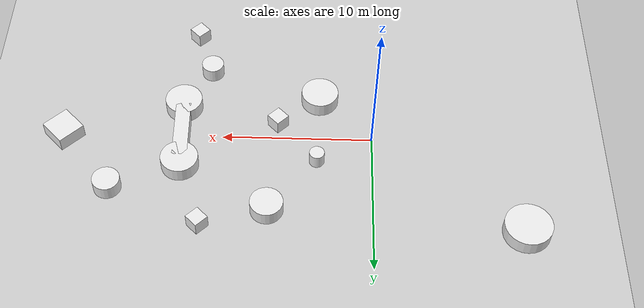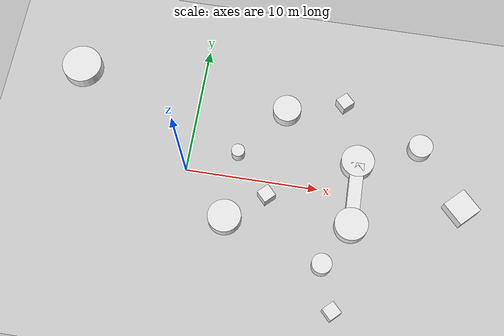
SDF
<sdf version="1.7">
 <world name="default">
  <light name="sun" type="directional">
   <pose>0 0 10 0 -0 0</pose>
   <diffuse>0.8 0.8 0.8 1</diffuse>
   <specular>0.2 0.2 0.2 1</specular>
   <attenuation>
    <range>1000</range>
    <constant>0.9</constant>
    <linear>0.01</linear>
    <quadratic>0.001</quadratic>
   </attenuation>
   <direction>-0.5 0.1 -0.9</direction>
   <spot><inner_angle>0</inner_angle><outer_angle>0</outer_angle><falloff>0</falloff></spot>
  </light>
  <model name="ground_plane">
   <static>1</static>
   <link name="link">
    <collision name="collision">
     <geometry><plane><normal>0 0 1</normal><size>100 100</size></plane></geometry>
     <surface><friction><ode><mu>100</mu><mu2>50</mu2></ode></friction></surface>
    </collision>
    <visual name="visual">
     <cast_shadows>0</cast_shadows>
     <geometry><plane><normal>0 0 1</normal><size>100 100</size></plane></geometry>
     <material>
      <script><uri>file://media/materials/scripts/gazebo.material</uri><name>Gazebo/Grey</name></script>
     </material>
    </visual>
   </link>
  </model>
  <gravity>0 0 -9.8</gravity>
  <magnetic_field>6e-06 2.3e-05 -4.2e-05</magnetic_field>
  <atmosphere type="adiabatic"/>
  <physics type="ode">
   <max_step_size>0.001</max_step_size>
   <real_time_factor>1</real_time_factor>
   <real_time_update_rate>1000</real_time_update_rate>
  </physics>
  <scene><ambient>0.4 0.4 0.4 1</ambient><background>0.7 0.7 0.7 1</background><shadows>1</shadows></scene>
  <spherical_coordinates>
   <surface_model>EARTH_WGS84</surface_model>
   <latitude_deg>0</latitude_deg>
   <longitude_deg>0</longitude_deg>
   <elevation>0</elevation>
   <heading_deg>0</heading_deg>
  </spherical_coordinates>
  <model name="pf_test_world">
   <link name="link_0">
    <inertial>
     <mass>1</mass>
     <inertia><ixx>0.145833</ixx><ixy>0</ixy><ixz>0</ixz><iyy>0.145833</iyy><iyz>0</iyz><izz>0.125</izz></inertia>
    </inertial>
    <pose>-6.36675 -3.88509 0 0 -0 0</pose>
    <visual name="visual">
     <geometry><cylinder><radius>0.5</radius><length>1</length></cylinder></geometry>
     <material>
      <lighting>1</lighting>
      <script><uri>file://media/materials/scripts/gazebo.material</uri><name>Gazebo/White</name></script>
      <shader type="pixel"/>
     </material>
    </visual>
    <collision name="collision">
     <geometry><cylinder><radius>0.5</radius><length>1</length></cylinder></geometry>
     <surface>
      <friction>
       <ode><mu>1</mu><mu2>1</mu2><fdir1>0 0 0</fdir1><slip1>0</slip1><slip2>0</slip2></ode>
       <torsional>
        <coefficient>1</coefficient>
        <patch_radius>0</patch_radius>
        <surface_radius>0</surface_radius>
        <use_patch_radius>1</use_patch_radius>
        <ode><slip>0</slip></ode>
       </torsional>
      </friction>
      <bounce><restitution_coefficient>0</restitution_coefficient><threshold>1e+06</threshold></bounce>
      <contact>
       <collide_without_contact>0</collide_without_contact>
       <collide_without_contact_bitmask>1</collide_without_contact_bitmask>
       <collide_bitmask>1</collide_bitmask>
       <ode>
        <soft_cfm>0</soft_cfm>
        <soft_erp>0.2</soft_erp>
        <kp>1e+13</kp>
        <kd>1</kd>
        <max_vel>0.01</max_vel>
        <min_depth>0</min_depth>
       </ode>
       <bullet>
        <split_impulse>1</split_impulse>
        <split_impulse_penetration_threshold>-0.01</split_impulse_penetration_threshold>
        <soft_cfm>0</soft_cfm>
        <soft_erp>0.2</soft_erp>
        <kp>1e+13</kp>
        <kd>1</kd>
       </bullet>
      </contact>
     </surface>
    </collision>
   </link>
   <link name="link_1">
    <inertial>
     <mass>6.17865</mass>
     <inertia><ixx>2.90087</ixx><ixy>0</ixy><ixz>0</ixz><iyy>2.90087</iyy><iyz>0</iyz><izz>4.77196</izz></inertia>
    </inertial>
    <pose>-2.75684 -7.58644 0 0 -0 0</pose>
    <visual name="visual">
     <geometry><cylinder><radius>1.24284</radius><length>1</length></cylinder></geometry>
     <material>
      <lighting>1</lighting>
      <script><uri>file://media/materials/scripts/gazebo.material</uri><name>Gazebo/White</name></script>
      <shader type="pixel"/>
     </material>
    </visual>
    <collision name="collision">
     <geometry><cylinder><radius>1.24284</radius><length>1</length></cylinder></geometry>
     <surface>
      <friction>
       <ode><mu>1</mu><mu2>1</mu2><fdir1>0 0 0</fdir1><slip1>0</slip1><slip2>0</slip2></ode>
       <torsional>
        <coefficient>1</coefficient>
        <patch_radius>0</patch_radius>
        <surface_radius>0</surface_radius>
        <use_patch_radius>1</use_patch_radius>
        <ode><slip>0</slip></ode>
       </torsional>
      </friction>
      <bounce><restitution_coefficient>0</restitution_coefficient><threshold>1e+06</threshold></bounce>
      <contact>
       <collide_without_contact>0</collide_without_contact>
       <collide_without_contact_bitmask>1</collide_without_contact_bitmask>
       <collide_bitmask>1</collide_bitmask>
       <ode>
        <soft_cfm>0</soft_cfm>
        <soft_erp>0.2</soft_erp>
        <kp>1e+13</kp>
        <kd>1</kd>
        <max_vel>0.01</max_vel>
        <min_depth>0</min_depth>
       </ode>
       <bullet>
        <split_impulse>1</split_impulse>
        <split_impulse_penetration_threshold>-0.01</split_impulse_penetration_threshold>
        <soft_cfm>0</soft_cfm>
        <soft_erp>0.2</soft_erp>
        <kp>1e+13</kp>
        <kd>1</kd>
       </bullet>
      </contact>
     </surface>
    </collision>
   </link>
   <link name="link_10">
    <inertial>
     <mass>4.65674</mass>
     <inertia><ixx>1.74338</ixx><ixy>0</ixy><ixz>0</ixz><iyy>1.74338</iyy><iyz>0</iyz><izz>2.71064</izz></inertia>
    </inertial>
    <pose>-7.02153 1.14018 0 0 -0 0</pose>
    <visual name="visual">
     <geometry><cylinder><radius>1.07897</radius><length>1</length></cylinder></geometry>
     <material>
      <lighting>1</lighting>
      <script><uri>file://media/materials/scripts/gazebo.material</uri><name>Gazebo/White</name></script>
      <shader type="pixel"/>
     </material>
    </visual>
    <collision name="collision">
     <geometry><cylinder><radius>1.07897</radius><length>1</length></cylinder></geometry>
     <surface>
      <friction>
       <ode><mu>1</mu><mu2>1</mu2><fdir1>0 0 0</fdir1><slip1>0</slip1><slip2>0</slip2></ode>
       <torsional>
        <coefficient>1</coefficient>
        <patch_radius>0</patch_radius>
        <surface_radius>0</surface_radius>
        <use_patch_radius>1</use_patch_radius>
        <ode><slip>0</slip></ode>
       </torsional>
      </friction>
      <bounce><restitution_coefficient>0</restitution_coefficient><threshold>1e+06</threshold></bounce>
      <contact>
       <collide_without_contact>0</collide_without_contact>
       <collide_without_contact_bitmask>1</collide_without_contact_bitmask>
       <collide_bitmask>1</collide_bitmask>
       <ode>
        <soft_cfm>0</soft_cfm>
        <soft_erp>0.2</soft_erp>
        <kp>1e+13</kp>
        <kd>1</kd>
        <max_vel>0.01</max_vel>
        <min_depth>0</min_depth>
       </ode>
       <bullet>
        <split_impulse>1</split_impulse>
        <split_impulse_penetration_threshold>-0.01</split_impulse_penetration_threshold>
        <soft_cfm>0</soft_cfm>
        <soft_erp>0.2</soft_erp>
        <kp>1e+13</kp>
        <kd>1</kd>
       </bullet>
      </contact>
     </surface>
    </collision>
   </link>
   <link name="link_12">
    <inertial>
     <mass>1</mass>
     <inertia>
      <ixx>0.166667</ixx>
      <ixy>0</ixy>
      <ixz>0</ixz>
      <iyy>0.166667</iyy>
      <iyz>0</iyz>
      <izz>0.166667</izz>
     </inertia>
    </inertial>
    <pose>-4.92146 5.13503 0 0 -0 0</pose>
    <visual name="visual">
     <geometry><box><size>1 1 1</size></box></geometry>
     <material>
      <lighting>1</lighting>
      <script><uri>file://media/materials/scripts/gazebo.material</uri><name>Gazebo/White</name></script>
      <shader type="pixel"/>
     </material>
    </visual>
    <collision name="collision">
     <geometry><box><size>1 1 1</size></box></geometry>
     <surface>
      <friction>
       <ode><mu>1</mu><mu2>1</mu2><fdir1>0 0 0</fdir1><slip1>0</slip1><slip2>0</slip2></ode>
       <torsional>
        <coefficient>1</coefficient>
        <patch_radius>0</patch_radius>
        <surface_radius>0</surface_radius>
        <use_patch_radius>1</use_patch_radius>
        <ode><slip>0</slip></ode>
       </torsional>
      </friction>
      <bounce><restitution_coefficient>0</restitution_coefficient><threshold>1e+06</threshold></bounce>
      <contact>
       <collide_without_contact>0</collide_without_contact>
       <collide_without_contact_bitmask>1</collide_without_contact_bitmask>
       <collide_bitmask>1</collide_bitmask>
       <ode>
        <soft_cfm>0</soft_cfm>
        <soft_erp>0.2</soft_erp>
        <kp>1e+13</kp>
        <kd>1</kd>
        <max_vel>0.01</max_vel>
        <min_depth>0</min_depth>
       </ode>
       <bullet>
        <split_impulse>1</split_impulse>
        <split_impulse_penetration_threshold>-0.01</split_impulse_penetration_threshold>
        <soft_cfm>0</soft_cfm>
        <soft_erp>0.2</soft_erp>
        <kp>1e+13</kp>
        <kd>1</kd>
       </bullet>
      </contact>
     </surface>
    </collision>
   </link>
   <link name="link_13">
    <inertial>
     <mass>3.71296</mass>
     <inertia><ixx>1.44112</ixx><ixy>0</ixy><ixz>0</ixz><iyy>1.47567</iyy><iyz>0</iyz><izz>2.29797</izz></inertia>
    </inertial>
    <pose>6.74058 7.03508 0 0 -0 0</pose>
    <visual name="visual">
     <geometry><box><size>1.94146 1.91248 1</size></box></geometry>
     <material>
      <lighting>1</lighting>
      <script><uri>file://media/materials/scripts/gazebo.material</uri><name>Gazebo/White</name></script>
      <shader type="pixel"/>
     </material>
    </visual>
    <collision name="collision">
     <geometry><box><size>1.94146 1.91248 1</size></box></geometry>
     <surface>
      <friction>
       <ode><mu>1</mu><mu2>1</mu2><fdir1>0 0 0</fdir1><slip1>0</slip1><slip2>0</slip2></ode>
       <torsional>
        <coefficient>1</coefficient>
        <patch_radius>0</patch_radius>
        <surface_radius>0</surface_radius>
        <use_patch_radius>1</use_patch_radius>
        <ode><slip>0</slip></ode>
       </torsional>
      </friction>
      <bounce><restitution_coefficient>0</restitution_coefficient><threshold>1e+06</threshold></bounce>
      <contact>
       <collide_without_contact>0</collide_without_contact>
       <collide_without_contact_bitmask>1</collide_without_contact_bitmask>
       <collide_bitmask>1</collide_bitmask>
       <ode>
        <soft_cfm>0</soft_cfm>
        <soft_erp>0.2</soft_erp>
        <kp>1e+13</kp>
        <kd>1</kd>
        <max_vel>0.01</max_vel>
        <min_depth>0</min_depth>
       </ode>
       <bullet>
        <split_impulse>1</split_impulse>
        <split_impulse_penetration_threshold>-0.01</split_impulse_penetration_threshold>
        <soft_cfm>0</soft_cfm>
        <soft_erp>0.2</soft_erp>
        <kp>1e+13</kp>
        <kd>1</kd>
       </bullet>
      </contact>
     </surface>
    </collision>
   </link>
   <link name="link_14">
    <inertial>
     <mass>1</mass>
     <inertia>
      <ixx>0.166667</ixx>
      <ixy>0</ixy>
      <ixz>0</ixz>
      <iyy>0.166667</iyy>
      <iyz>0</iyz>
      <izz>0.166667</izz>
     </inertia>
    </inertial>
    <pose>7.2986 -5.31145 0 0 -0 0</pose>
    <visual name="visual">
     <geometry><box><size>1 1 1</size></box></geometry>
     <material>
      <lighting>1</lighting>
      <script><uri>file://media/materials/scripts/gazebo.material</uri><name>Gazebo/White</name></script>
      <shader type="pixel"/>
     </material>
    </visual>
    <collision name="collision">
     <geometry><box><size>1 1 1</size></box></geometry>
     <surface>
      <friction>
       <ode><mu>1</mu><mu2>1</mu2><fdir1>0 0 0</fdir1><slip1>0</slip1><slip2>0</slip2></ode>
       <torsional>
        <coefficient>1</coefficient>
        <patch_radius>0</patch_radius>
        <surface_radius>0</surface_radius>
        <use_patch_radius>1</use_patch_radius>
        <ode><slip>0</slip></ode>
       </torsional>
      </friction>
      <bounce><restitution_coefficient>0</restitution_coefficient><threshold>1e+06</threshold></bounce>
      <contact>
       <collide_without_contact>0</collide_without_contact>
       <collide_without_contact_bitmask>1</collide_without_contact_bitmask>
       <collide_bitmask>1</collide_bitmask>
       <ode>
        <soft_cfm>0</soft_cfm>
        <soft_erp>0.2</soft_erp>
        <kp>1e+13</kp>
        <kd>1</kd>
        <max_vel>0.01</max_vel>
        <min_depth>0</min_depth>
       </ode>
       <bullet>
        <split_impulse>1</split_impulse>
        <split_impulse_penetration_threshold>-0.01</split_impulse_penetration_threshold>
        <soft_cfm>0</soft_cfm>
        <soft_erp>0.2</soft_erp>
        <kp>1e+13</kp>
        <kd>1</kd>
       </bullet>
      </contact>
     </surface>
    </collision>
   </link>
   <link name="link_1_clone">
    <inertial>
     <mass>6.17865</mass>
     <inertia><ixx>2.90087</ixx><ixy>0</ixy><ixz>0</ixz><iyy>2.90087</iyy><iyz>0</iyz><izz>4.77196</izz></inertia>
    </inertial>
    <pose>3.08747 -0.372047 0 0 -0 0</pose>
    <visual name="visual">
     <geometry><cylinder><radius>1.24284</radius><length>1</length></cylinder></geometry>
     <material>
      <lighting>1</lighting>
      <script><uri>file://media/materials/scripts/gazebo.material</uri><name>Gazebo/White</name></script>
      <shader type="pixel"/>
     </material>
    </visual>
    <collision name="collision">
     <geometry><cylinder><radius>1.24284</radius><length>1</length></cylinder></geometry>
     <surface>
      <friction>
       <ode><mu>1</mu><mu2>1</mu2><fdir1>0 0 0</fdir1><slip1>0</slip1><slip2>0</slip2></ode>
       <torsional>
        <coefficient>1</coefficient>
        <patch_radius>0</patch_radius>
        <surface_radius>0</surface_radius>
        <use_patch_radius>1</use_patch_radius>
        <ode><slip>0</slip></ode>
       </torsional>
      </friction>
      <bounce><restitution_coefficient>0</restitution_coefficient><threshold>1e+06</threshold></bounce>
      <contact>
       <collide_without_contact>0</collide_without_contact>
       <collide_without_contact_bitmask>1</collide_without_contact_bitmask>
       <collide_bitmask>1</collide_bitmask>
       <ode>
        <soft_cfm>0</soft_cfm>
        <soft_erp>0.2</soft_erp>
        <kp>1e+13</kp>
        <kd>1</kd>
        <max_vel>0.01</max_vel>
        <min_depth>0</min_depth>
       </ode>
       <bullet>
        <split_impulse>1</split_impulse>
        <split_impulse_penetration_threshold>-0.01</split_impulse_penetration_threshold>
        <soft_cfm>0</soft_cfm>
        <soft_erp>0.2</soft_erp>
        <kp>1e+13</kp>
        <kd>1</kd>
       </bullet>
      </contact>
     </surface>
    </collision>
   </link>
   <link name="link_1_clone_0">
    <inertial>
     <mass>6.17865</mass>
     <inertia><ixx>2.90087</ixx><ixy>0</ixy><ixz>0</ixz><iyy>2.90087</iyy><iyz>0</iyz><izz>4.77196</izz></inertia>
    </inertial>
    <pose>-0.50615 2.97084 0 0 -0 0</pose>
    <visual name="visual">
     <geometry><cylinder><radius>1.24284</radius><length>1</length></cylinder></geometry>
     <material>
      <lighting>1</lighting>
      <script><uri>file://media/materials/scripts/gazebo.material</uri><name>Gazebo/White</name></script>
      <shader type="pixel"/>
     </material>
    </visual>
    <collision name="collision">
     <geometry><cylinder><radius>1.24284</radius><length>1</length></cylinder></geometry>
     <surface>
      <friction>
       <ode><mu>1</mu><mu2>1</mu2><fdir1>0 0 0</fdir1><slip1>0</slip1><slip2>0</slip2></ode>
       <torsional>
        <coefficient>1</coefficient>
        <patch_radius>0</patch_radius>
        <surface_radius>0</surface_radius>
        <use_patch_radius>1</use_patch_radius>
        <ode><slip>0</slip></ode>
       </torsional>
      </friction>
      <bounce><restitution_coefficient>0</restitution_coefficient><threshold>1e+06</threshold></bounce>
      <contact>
       <collide_without_contact>0</collide_without_contact>
       <collide_without_contact_bitmask>1</collide_without_contact_bitmask>
       <collide_bitmask>1</collide_bitmask>
       <ode>
        <soft_cfm>0</soft_cfm>
        <soft_erp>0.2</soft_erp>
        <kp>1e+13</kp>
        <kd>1</kd>
        <max_vel>0.01</max_vel>
        <min_depth>0</min_depth>
       </ode>
       <bullet>
        <split_impulse>1</split_impulse>
        <split_impulse_penetration_threshold>-0.01</split_impulse_penetration_threshold>
        <soft_cfm>0</soft_cfm>
        <soft_erp>0.2</soft_erp>
        <kp>1e+13</kp>
        <kd>1</kd>
       </bullet>
      </contact>
     </surface>
    </collision>
   </link>
   <link name="link_2">
    <inertial>
     <mass>3.29778</mass>
     <inertia>
      <ixx>0.954522</ixx>
      <ixy>0</ixy>
      <ixz>0</ixz>
      <iyy>0.954522</iyy>
      <iyz>0</iyz>
      <izz>1.35941</izz>
     </inertia>
    </inertial>
    <pose>1.28924 7.57308 0 0 -0 0</pose>
    <visual name="visual">
     <geometry><cylinder><radius>0.907987</radius><length>1</length></cylinder></geometry>
     <material>
      <lighting>1</lighting>
      <script><uri>file://media/materials/scripts/gazebo.material</uri><name>Gazebo/White</name></script>
      <shader type="pixel"/>
     </material>
    </visual>
    <collision name="collision">
     <geometry><cylinder><radius>0.907987</radius><length>1</length></cylinder></geometry>
     <surface>
      <friction>
       <ode><mu>1</mu><mu2>1</mu2><fdir1>0 0 0</fdir1><slip1>0</slip1><slip2>0</slip2></ode>
       <torsional>
        <coefficient>1</coefficient>
        <patch_radius>0</patch_radius>
        <surface_radius>0</surface_radius>
        <use_patch_radius>1</use_patch_radius>
        <ode><slip>0</slip></ode>
       </torsional>
      </friction>
      <bounce><restitution_coefficient>0</restitution_coefficient><threshold>1e+06</threshold></bounce>
      <contact>
       <collide_without_contact>0</collide_without_contact>
       <collide_without_contact_bitmask>1</collide_without_contact_bitmask>
       <collide_bitmask>1</collide_bitmask>
       <ode>
        <soft_cfm>0</soft_cfm>
        <soft_erp>0.2</soft_erp>
        <kp>1e+13</kp>
        <kd>1</kd>
        <max_vel>0.01</max_vel>
        <min_depth>0</min_depth>
       </ode>
       <bullet>
        <split_impulse>1</split_impulse>
        <split_impulse_penetration_threshold>-0.01</split_impulse_penetration_threshold>
        <soft_cfm>0</soft_cfm>
        <soft_erp>0.2</soft_erp>
        <kp>1e+13</kp>
        <kd>1</kd>
       </bullet>
      </contact>
     </surface>
    </collision>
   </link>
   <link name="link_3">
    <inertial>
     <mass>2.24879</mass>
     <inertia>
      <ixx>0.503465</ixx>
      <ixy>0</ixy>
      <ixz>0</ixz>
      <iyy>0.503465</iyy>
      <iyz>0</iyz>
      <izz>0.632132</izz>
     </inertia>
    </inertial>
    <pose>4.19386 -3.87065 0 0 -0 0</pose>
    <visual name="visual">
     <geometry><cylinder><radius>0.749799</radius><length>1</length></cylinder></geometry>
     <material>
      <lighting>1</lighting>
      <script><uri>file://media/materials/scripts/gazebo.material</uri><name>Gazebo/White</name></script>
      <shader type="pixel"/>
     </material>
    </visual>
    <collision name="collision">
     <geometry><cylinder><radius>0.749799</radius><length>1</length></cylinder></geometry>
     <surface>
      <friction>
       <ode><mu>1</mu><mu2>1</mu2><fdir1>0 0 0</fdir1><slip1>0</slip1><slip2>0</slip2></ode>
       <torsional>
        <coefficient>1</coefficient>
        <patch_radius>0</patch_radius>
        <surface_radius>0</surface_radius>
        <use_patch_radius>1</use_patch_radius>
        <ode><slip>0</slip></ode>
       </torsional>
      </friction>
      <bounce><restitution_coefficient>0</restitution_coefficient><threshold>1e+06</threshold></bounce>
      <contact>
       <collide_without_contact>0</collide_without_contact>
       <collide_without_contact_bitmask>1</collide_without_contact_bitmask>
       <collide_bitmask>1</collide_bitmask>
       <ode>
        <soft_cfm>0</soft_cfm>
        <soft_erp>0.2</soft_erp>
        <kp>1e+13</kp>
        <kd>1</kd>
        <max_vel>0.01</max_vel>
        <min_depth>0</min_depth>
       </ode>
       <bullet>
        <split_impulse>1</split_impulse>
        <split_impulse_penetration_threshold>-0.01</split_impulse_penetration_threshold>
        <soft_cfm>0</soft_cfm>
        <soft_erp>0.2</soft_erp>
        <kp>1e+13</kp>
        <kd>1</kd>
       </bullet>
      </contact>
     </surface>
    </collision>
   </link>
   <link name="link_6">
    <inertial>
     <mass>1</mass>
     <inertia>
      <ixx>0.166667</ixx>
      <ixy>0</ixy>
      <ixz>0</ixz>
      <iyy>0.166667</iyy>
      <iyz>0</iyz>
      <izz>0.166667</izz>
     </inertia>
    </inertial>
    <pose>-2.36718 -4.09103 0 0 -0 0</pose>
    <visual name="visual">
     <geometry><box><size>1 1 1</size></box></geometry>
     <material>
      <lighting>1</lighting>
      <script><uri>file://media/materials/scripts/gazebo.material</uri><name>Gazebo/White</name></script>
      <shader type="pixel"/>
     </material>
    </visual>
    <collision name="collision">
     <geometry><box><size>1 1 1</size></box></geometry>
     <surface>
      <friction>
       <ode><mu>1</mu><mu2>1</mu2><fdir1>0 0 0</fdir1><slip1>0</slip1><slip2>0</slip2></ode>
       <torsional>
        <coefficient>1</coefficient>
        <patch_radius>0</patch_radius>
        <surface_radius>0</surface_radius>
        <use_patch_radius>1</use_patch_radius>
        <ode><slip>0</slip></ode>
       </torsional>
      </friction>
      <bounce><restitution_coefficient>0</restitution_coefficient><threshold>1e+06</threshold></bounce>
      <contact>
       <collide_without_contact>0</collide_without_contact>
       <collide_without_contact_bitmask>1</collide_without_contact_bitmask>
       <collide_bitmask>1</collide_bitmask>
       <ode>
        <soft_cfm>0</soft_cfm>
        <soft_erp>0.2</soft_erp>
        <kp>1e+13</kp>
        <kd>1</kd>
        <max_vel>0.01</max_vel>
        <min_depth>0</min_depth>
       </ode>
       <bullet>
        <split_impulse>1</split_impulse>
        <split_impulse_penetration_threshold>-0.01</split_impulse_penetration_threshold>
        <soft_cfm>0</soft_cfm>
        <soft_erp>0.2</soft_erp>
        <kp>1e+13</kp>
        <kd>1</kd>
       </bullet>
      </contact>
     </surface>
    </collision>
   </link>
   <link name="link_7">
    <inertial>
     <mass>4.6591</mass>
     <inertia><ixx>0.776516</ixx><ixy>0</ixy><ixz>0</ixz><iyy>8.81622</iyy><iyz>0</iyz><izz>8.81622</izz></inertia>
    </inertial>
    <pose>1.33009 1.26245 0 0 0 -0.754007</pose>
    <visual name="visual">
     <geometry><box><size>4.65909 1 1</size></box></geometry>
     <material>
      <lighting>1</lighting>
      <script><uri>file://media/materials/scripts/gazebo.material</uri><name>Gazebo/White</name></script>
      <shader type="pixel"/>
     </material>
    </visual>
    <collision name="collision">
     <geometry><box><size>4.65909 1 1</size></box></geometry>
     <surface>
      <friction>
       <ode><mu>1</mu><mu2>1</mu2><fdir1>0 0 0</fdir1><slip1>0</slip1><slip2>0</slip2></ode>
       <torsional>
        <coefficient>1</coefficient>
        <patch_radius>0</patch_radius>
        <surface_radius>0</surface_radius>
        <use_patch_radius>1</use_patch_radius>
        <ode><slip>0</slip></ode>
       </torsional>
      </friction>
      <bounce><restitution_coefficient>0</restitution_coefficient><threshold>1e+06</threshold></bounce>
      <contact>
       <collide_without_contact>0</collide_without_contact>
       <collide_without_contact_bitmask>1</collide_without_contact_bitmask>
       <collide_bitmask>1</collide_bitmask>
       <ode>
        <soft_cfm>0</soft_cfm>
        <soft_erp>0.2</soft_erp>
        <kp>1e+13</kp>
        <kd>1</kd>
        <max_vel>0.01</max_vel>
        <min_depth>0</min_depth>
       </ode>
       <bullet>
        <split_impulse>1</split_impulse>
        <split_impulse_penetration_threshold>-0.01</split_impulse_penetration_threshold>
        <soft_cfm>0</soft_cfm>
        <soft_erp>0.2</soft_erp>
        <kp>1e+13</kp>
        <kd>1</kd>
       </bullet>
      </contact>
     </surface>
    </collision>
   </link>
   <static>1</static>
   <pose>10.8906 -0.012451 0.500005 0 -2e-06 -0.798581</pose>
  </model>
  <model name="unit_cylinder">
   <pose>-9.6244 7.01553 0.499996 -3e-06 3e-06 -0.000104</pose>
   <link name="link">
    <inertial>
     <mass>1</mass>
     <inertia><ixx>0.145833</ixx><ixy>0</ixy><ixz>0</ixz><iyy>0.145833</iyy><iyz>0</iyz><izz>0.125</izz></inertia>
    </inertial>
    <collision name="collision">
     <geometry><cylinder><radius>1.53119</radius><length>1</length></cylinder></geometry>
    </collision>
    <visual name="visual">
     <geometry><cylinder><radius>1.53119</radius><length>1</length></cylinder></geometry>
     <material>
      <script><name>Gazebo/White</name><uri>file://media/materials/scripts/gazebo.material</uri></script>
     </material>
    </visual>
   </link>
   <static>1</static>
  </model>
 </world>
</sdf>
